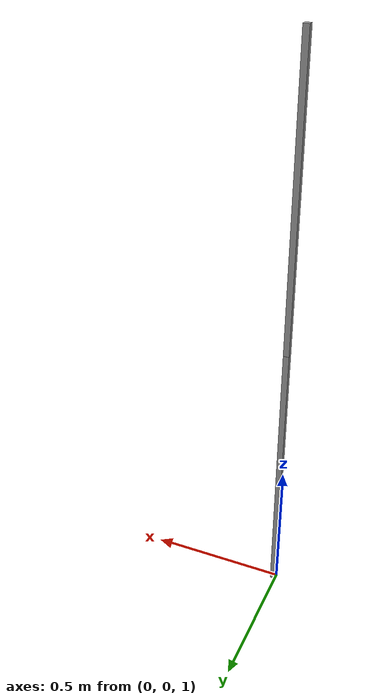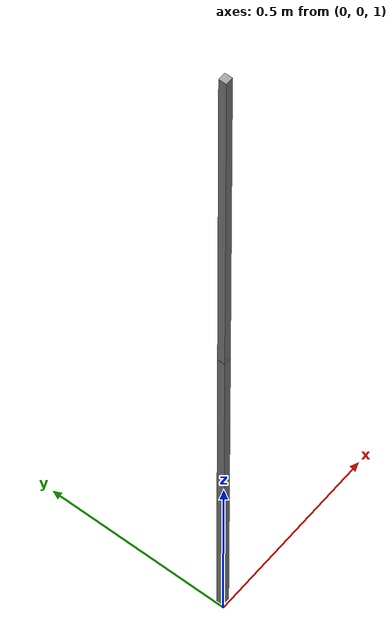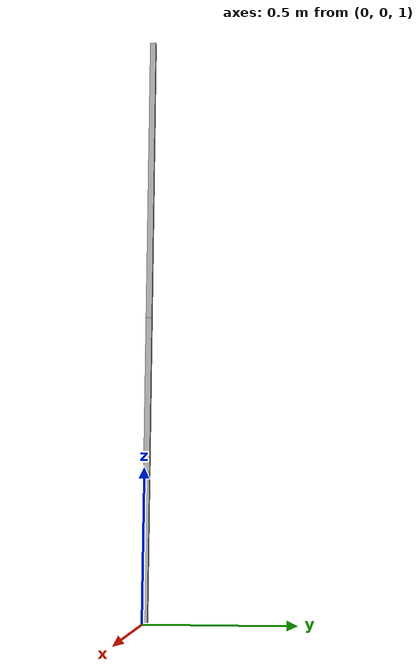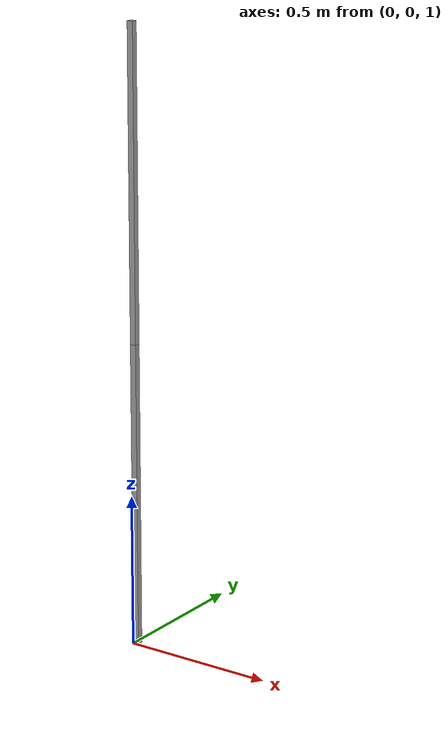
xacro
<?xml version="1.0" ?>
<!-- |    This document was autogenerated by csv to urdf                               | -->
<!-- |    EDITING THIS FILE BY HAND IS NOT RECOMMENDED                                 | -->
<robot name="RobotFromCsv" xmlns:body="http://playerstage.sourceforge.net/gazebo/xmlschema/#body" xmlns:controller="http://playerstage.sourceforge.net/gazebo/xmlschema/#controller" xmlns:geom="http://playerstage.sourceforge.net/gazebo/xmlschema/#geom" xmlns:interface="http://playerstage.sourceforge.net/gazebo/xmlschema/#interface" xmlns:joint="http://playerstage.sourceforge.net/gazebo/xmlschema/#slider" xmlns:sensor="http://playerstage.sourceforge.net/gazebo/xmlschema/#sensor" xmlns:xacro="http://ros.org/wiki/xacro">
  <material name="Blue">
    <color rgba="0.0 0.0 0.8 1.0"/>
  </material>
  <material name="Green">
    <color rgba="0.0 0.8 0.0 1.0"/>
  </material>
  <material name="Grey">
    <color rgba="0.2 0.2 0.2 1.0"/>
  </material>
  <material name="LightGrey">
    <color rgba="0.6 0.6 0.6 1.0"/>
  </material>
  <material name="Red">
    <color rgba="0.8 0.0 0.0 1.0"/>
  </material>
  <material name="White">
    <color rgba="1.0 1.0 1.0 1.0"/>
  </material>
  <gazebo>
    <controller:pr2_gazebo_ros_controller_manager name="pr2_gazebo_ros_controller_manager" plugin="libpr2_gazebo_ros_controller_manager.so">
      <alwaysOn>true</alwaysOn>
      <updateRate>1000.0</updateRate>
    </controller:pr2_gazebo_ros_controller_manager>
  </gazebo>
  <link name="world"/>
  <link name="base_link"/>
  <joint name="base_link_to_world_fixed" type="fixed">
    <parent link="world"/>
    <child link="base_link"/>
    <origin rpy="0 0 0" xyz="0 0 0"/>
  </joint>
<link name="J1_link">
  <inertial>
    <origin xyz="0 0 0" rpy="0 0 0" />
    <mass value="0.008" />
    <inertia  ixx="0.0" ixy="0.0"  ixz="0.0"  iyy="0.1"  iyz="0.0"
	      izz="0.0" />
  </inertial>
  <visual>
    <origin xyz="0.01 0.01 0.5 " rpy="0 0 0" />
    <geometry name="J1_visual">
      <box size="0.02 0.02 1.0" />
    </geometry>
    <material name="LightGrey" />
  </visual>
  <collision>
    <origin xyz="0.01 0.01 0.5 " rpy="0 0 0" />
    <geometry name="J1_collision_geom">
      <box size="0.02 0.02 1.0" />
    </geometry>
  </collision>
</link>

<joint name="J1" type="revolute">
  <parent link="base_link"/>
  <child link="J1_link"/>
  <origin xyz="0.0 0.0 1.0" rpy="0.0 0.0 0.0" />
  <axis xyz="1.0 0.0 0.0 "/>
  <limit lower="0.0" upper="1.5"
	 effort="10" velocity="1.0"/>
  <dynamics damping="50.5"/>
</joint>

<transmission type="pr2_mechanism_model/SimpleTransmission" name="J1_transmission">
  <actuator name="J1" />
  <joint name="J1" />
  <mechanicalReduction>1</mechanicalReduction>
  <motorTorqueConstant>1</motorTorqueConstant>
  <pulsesPerRevolution>90000</pulsesPerRevolution>
</transmission>
<link name="J2_link">
  <inertial>
    <origin xyz="0 0 0" rpy="0 0 0" />
    <mass value="0.008" />
    <inertia  ixx="0.0" ixy="0.0"  ixz="0.0"  iyy="0.1"  iyz="0.0"
	      izz="0.0" />
  </inertial>
  <visual>
    <origin xyz="0.01 0.01 0.5 " rpy="0 0 0" />
    <geometry name="J2_visual">
      <box size="0.02 0.02 1.0" />
    </geometry>
    <material name="LightGrey" />
  </visual>
  <collision>
    <origin xyz="0.01 0.01 0.5 " rpy="0 0 0" />
    <geometry name="J2_collision_geom">
      <box size="0.02 0.02 1.0" />
    </geometry>
  </collision>
</link>

<joint name="J2" type="revolute">
  <parent link="J1_link"/>
  <child link="J2_link"/>
  <origin xyz="0.0 0.0 1.0" rpy="0.0 0.0 0.0" />
  <axis xyz="1.0 0.0 0.0 "/>
  <limit lower="0.0" upper="1.5"
	 effort="10" velocity="1.0"/>
  <dynamics damping="50.5"/>
</joint>

<transmission type="pr2_mechanism_model/SimpleTransmission" name="J2_transmission">
  <actuator name="J2" />
  <joint name="J2" />
  <mechanicalReduction>1</mechanicalReduction>
  <motorTorqueConstant>1</motorTorqueConstant>
  <pulsesPerRevolution>90000</pulsesPerRevolution>
</transmission>
</robot>
